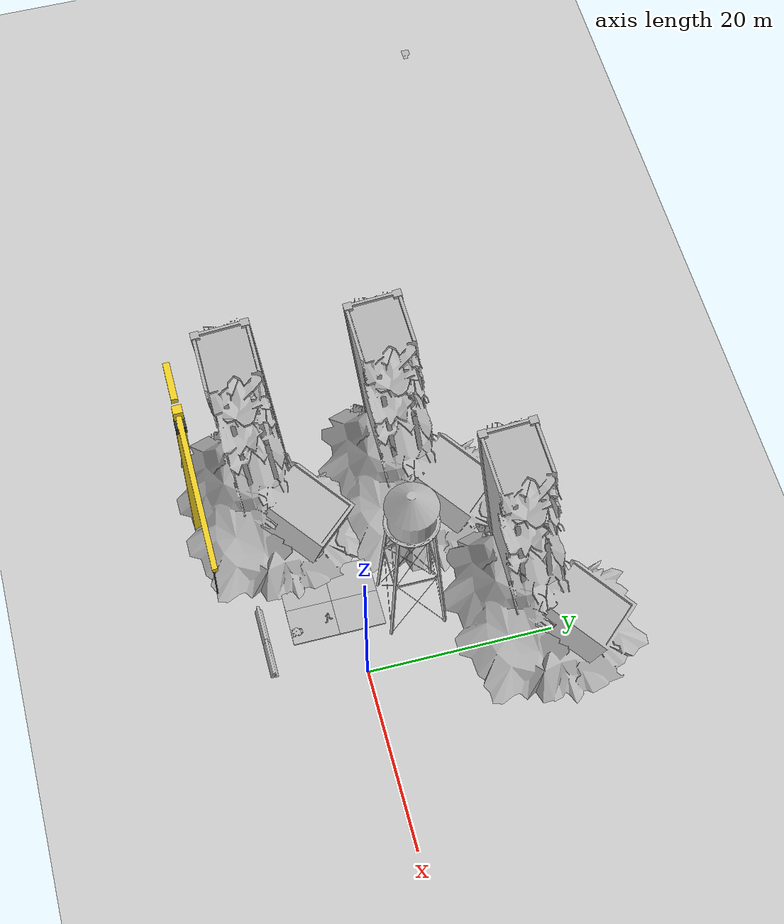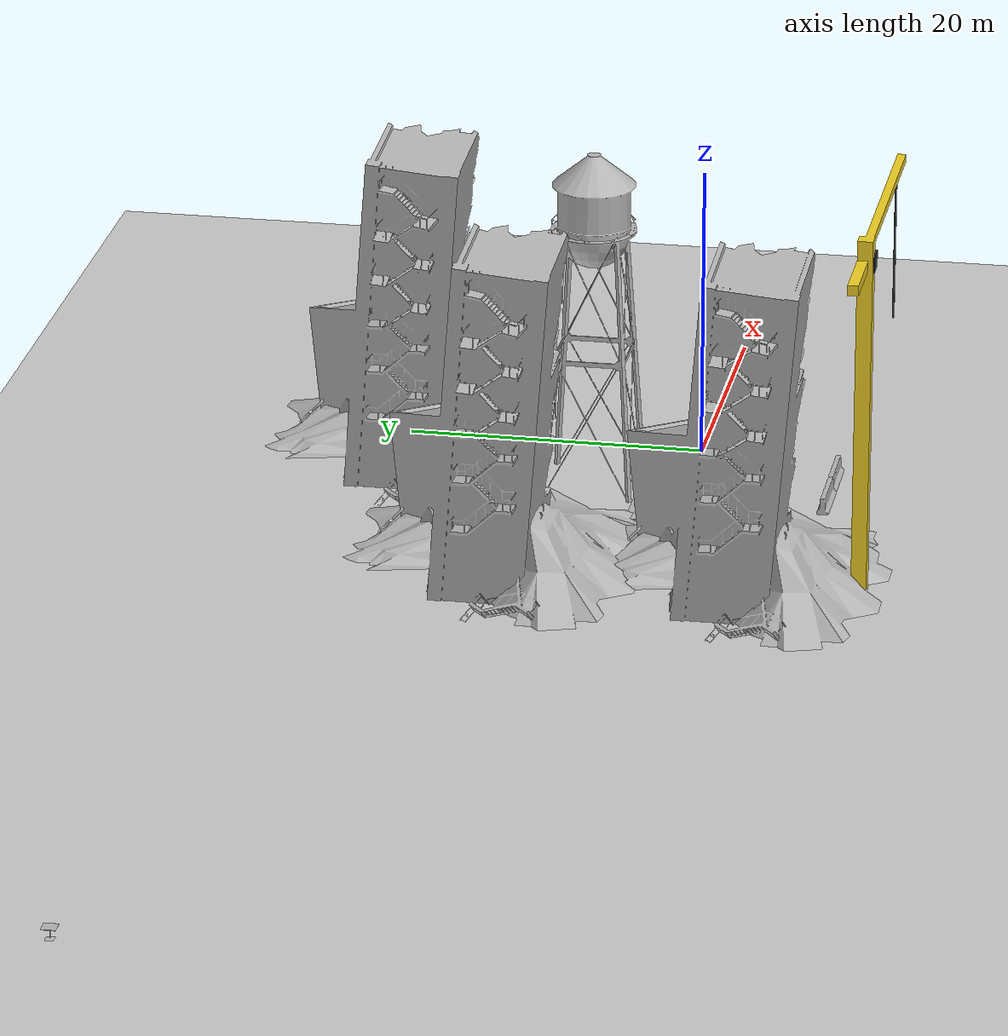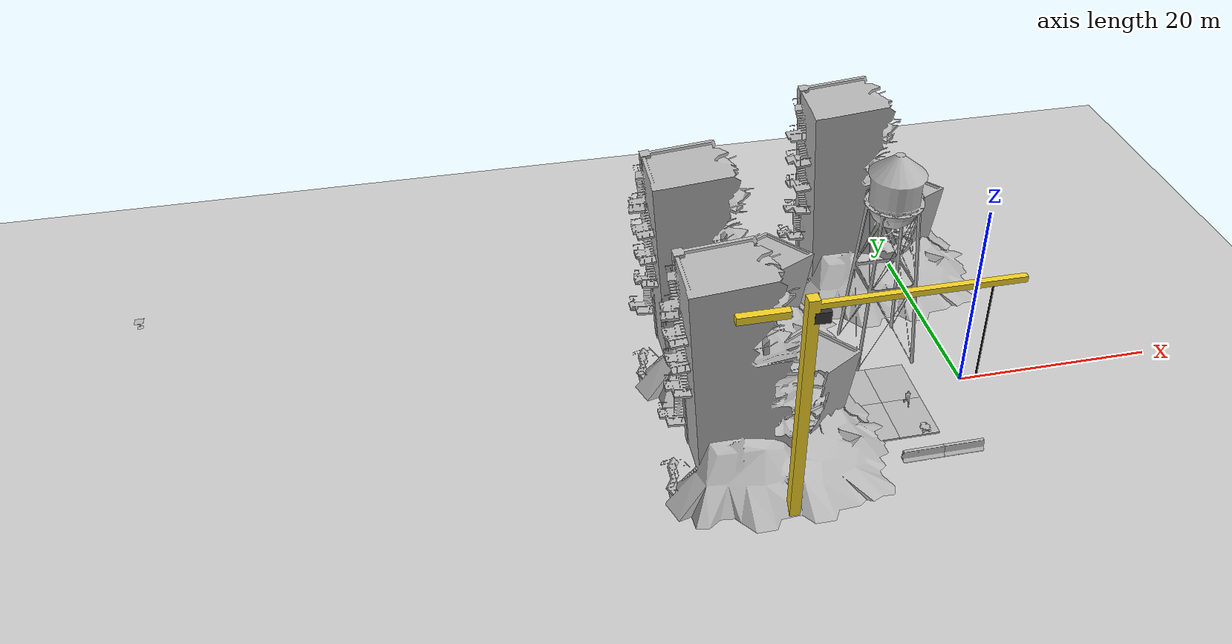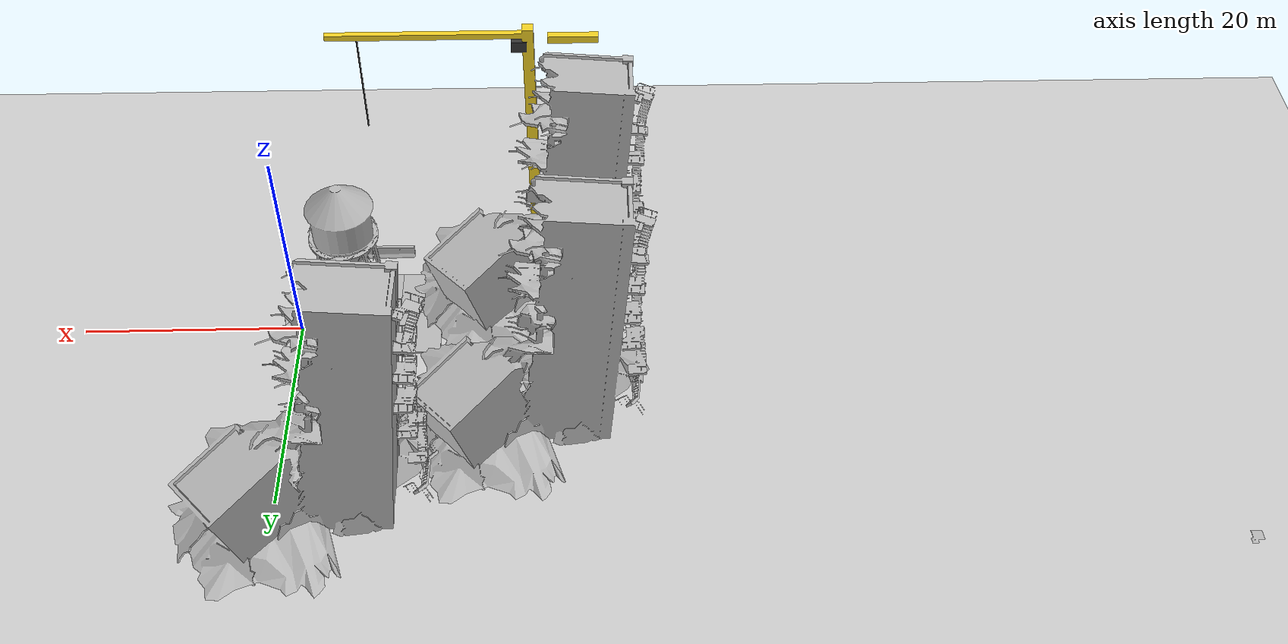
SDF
<sdf version="1.6">
 <world name="default">
  <model name="ground_plane">
   <static>1</static>
   <link name="link">
    <collision name="collision">
     <geometry><plane><normal>0 0 1</normal><size>100 100</size></plane></geometry>
     <surface>
      <contact><collide_bitmask>65535</collide_bitmask></contact>
      <friction><ode><mu>100</mu><mu2>50</mu2></ode></friction>
     </surface>
    </collision>
    <visual name="visual">
     <cast_shadows>0</cast_shadows>
     <geometry><plane><normal>0 0 1</normal><size>100 100</size></plane></geometry>
     <material>
      <script><uri>file://media/materials/scripts/gazebo.material</uri><name>Gazebo/Grey</name></script>
     </material>
    </visual>
   </link>
  </model>
  <model name="ball_bearing_0">
   <link name="link">
    <pose>0 0 0.003 0 -0 0</pose>
    <inertial>
     <mass>0.0011</mass>
     <inertia>
      <ixx>3.96e-09</ixx>
      <ixy>0</ixy>
      <ixz>0</ixz>
      <iyy>3.96e-09</iyy>
      <iyz>0</iyz>
      <izz>3.96e-09</izz>
     </inertia>
    </inertial>
    <collision name="collision">
     <geometry><sphere><radius>0.003</radius></sphere></geometry>
     <surface>
      <contact>
       <poissons_ratio>0.305</poissons_ratio>
       <elastic_modulus>2e+11</elastic_modulus>
       <ode><kp>100000</kp><kd>100</kd><max_vel>100</max_vel><min_depth>0.001</min_depth></ode>
      </contact>
      <friction>
       <torsional>
        <coefficient>1</coefficient>
        <use_patch_radius>0</use_patch_radius>
        <surface_radius>0.01</surface_radius>
       </torsional>
      </friction>
     </surface>
    </collision>
    <visual name="visual">
     <geometry><sphere><radius>0.003</radius></sphere></geometry>
     <material>
      <script><uri>file://media/materials/scripts/gazebo.material</uri><name>Gazebo/Grey</name></script>
     </material>
    </visual>
    <velocity_decay><linear>0</linear><angular>0.005</angular></velocity_decay>
   </link>
   <pose>-1.98894 4.15256 -0.000268 0 -0 0</pose>
  </model>
  <model name="tower_crane">
   <static>1</static>
   <link name="link">
    <collision name="collision">
     <geometry><mesh><uri>model://tower_crane/meshes/tower_crane.dae</uri></mesh></geometry>
    </collision>
    <visual name="visual">
     <geometry><mesh><uri>model://tower_crane/meshes/tower_crane.dae</uri></mesh></geometry>
    </visual>
   </link>
   <pose>-21.6491 -13.6197 0 0 -0 0</pose>
  </model>
  <model name="cafe_table">
   <static>1</static>
   <link name="link">
    <collision name="surface">
     <pose>0 0 0.755 0 -0 0</pose>
     <geometry><box><size>0.913 0.913 0.04</size></box></geometry>
    </collision>
    <collision name="column">
     <pose>0 0 0.37 0 -0 0</pose>
     <geometry><box><size>0.042 0.042 0.74</size></box></geometry>
    </collision>
    <collision name="base">
     <pose>0 0 0.02 0 -0 0</pose>
     <geometry><box><size>0.56 0.56 0.04</size></box></geometry>
    </collision>
    <visual name="visual">
     <geometry><mesh><uri>model://cafe_table/meshes/cafe_table.dae</uri></mesh></geometry>
    </visual>
   </link>
   <pose>-81.43 25.5131 0 0 -0 0</pose>
  </model>
  <model name="water_tower">
   <static>1</static>
   <link name="link">
    <collision name="collision">
     <geometry><mesh><uri>model://water_tower/meshes/water_tower.dae</uri></mesh></geometry>
    </collision>
    <visual name="visual">
     <geometry><mesh><uri>model://water_tower/meshes/water_tower.dae</uri></mesh></geometry>
    </visual>
   </link>
   <pose>-6.67298 6.39547 0 0 -0 0</pose>
  </model>
  <model name="collapsed_industrial">
   <static>1</static>
   <link name="link">
    <collision name="collision">
     <geometry><mesh><uri>model://collapsed_industrial/meshes/collapsed_industrial.dae</uri></mesh></geometry>
    </collision>
    <visual name="visual">
     <geometry><mesh><uri>model://collapsed_industrial/meshes/collapsed_industrial.dae</uri></mesh></geometry>
    </visual>
   </link>
   <pose>-3.44493 18.6224 0 0 -0 0</pose>
  </model>
  <model name="collapsed_industrial_0">
   <static>1</static>
   <link name="link">
    <collision name="collision">
     <geometry><mesh><uri>model://collapsed_industrial/meshes/collapsed_industrial.dae</uri></mesh></geometry>
    </collision>
    <visual name="visual">
     <geometry><mesh><uri>model://collapsed_industrial/meshes/collapsed_industrial.dae</uri></mesh></geometry>
    </visual>
   </link>
   <pose>-21.6566 9.44885 0 0 -0 0</pose>
  </model>
  <model name="collapsed_industrial_1">
   <static>1</static>
   <link name="link">
    <collision name="collision">
     <geometry><mesh><uri>model://collapsed_industrial/meshes/collapsed_industrial.dae</uri></mesh></geometry>
    </collision>
    <visual name="visual">
     <geometry><mesh><uri>model://collapsed_industrial/meshes/collapsed_industrial.dae</uri></mesh></geometry>
    </visual>
   </link>
   <pose>-22.1267 -6.4859 0 0 -0 0</pose>
  </model>
  <model name="jersey_barrier_2">
   <static>1</static>
   <link name="link">
    <visual name="visual">
     <geometry><mesh><uri>model://jersey_barrier/meshes/jersey_barrier.dae</uri></mesh></geometry>
    </visual>
    <collision name="upright">
     <pose>0 0 0.5715 0 -0 0</pose>
     <geometry><box><size>4.06542 0.3063 1.143</size></box></geometry>
    </collision>
    <collision name="base">
     <pose>0 0 0.032258 0 -0 0</pose>
     <geometry><box><size>4.06542 0.8107 0.064516</size></box></geometry>
    </collision>
    <collision name="base2">
     <pose>0 0 0.1 0 -0 0</pose>
     <geometry><box><size>4.06542 0.65 0.1</size></box></geometry>
    </collision>
    <collision name="base3">
     <pose>0 0 0.2 0 -0 0</pose>
     <geometry><box><size>4.06542 0.5 0.1</size></box></geometry>
    </collision>
    <collision name="left-angle">
     <pose>0 -0.224 0.2401 0.9 -0 0</pose>
     <geometry><box><size>4.06542 0.5 0.064516</size></box></geometry>
    </collision>
    <collision name="right-angle">
     <pose>0 0.224 0.2401 -0.9 0 0</pose>
     <geometry><box><size>4.06542 0.5 0.064516</size></box></geometry>
    </collision>
   </link>
   <pose>-3.90215 -9.5815 0 0 -0 0</pose>
  </model>
  <model name="jersey_barrier_3">
   <static>1</static>
   <link name="link">
    <visual name="visual">
     <geometry><mesh><uri>model://jersey_barrier/meshes/jersey_barrier.dae</uri></mesh></geometry>
    </visual>
    <collision name="upright">
     <pose>0 0 0.5715 0 -0 0</pose>
     <geometry><box><size>4.06542 0.3063 1.143</size></box></geometry>
    </collision>
    <collision name="base">
     <pose>0 0 0.032258 0 -0 0</pose>
     <geometry><box><size>4.06542 0.8107 0.064516</size></box></geometry>
    </collision>
    <collision name="base2">
     <pose>0 0 0.1 0 -0 0</pose>
     <geometry><box><size>4.06542 0.65 0.1</size></box></geometry>
    </collision>
    <collision name="base3">
     <pose>0 0 0.2 0 -0 0</pose>
     <geometry><box><size>4.06542 0.5 0.1</size></box></geometry>
    </collision>
    <collision name="left-angle">
     <pose>0 -0.224 0.2401 0.9 -0 0</pose>
     <geometry><box><size>4.06542 0.5 0.064516</size></box></geometry>
    </collision>
    <collision name="right-angle">
     <pose>0 0.224 0.2401 -0.9 0 0</pose>
     <geometry><box><size>4.06542 0.5 0.064516</size></box></geometry>
    </collision>
   </link>
   <pose>-7.8208 -9.59458 0 0 -0 0</pose>
  </model>
  <model name="mars_rover">
   <static>1</static>
   <link name="link">
    <collision name="solar_panel_collision">
     <pose>0 -0.06945 0.47293 0 -0 0</pose>
     <geometry><box><size>0.87974 0.8821 0.02602</size></box></geometry>
    </collision>
    <collision name="chassis_collision">
     <pose>0 -0.05 0.31475 0 -0 0</pose>
     <geometry><box><size>0.49522 0.67401 0.28915</size></box></geometry>
    </collision>
    <collision name="rear_left_bumper_collision">
     <pose>0.30107 0.3835 0.38976 0 -0 0</pose>
     <geometry><box><size>0.04442 0.38897 0.07918</size></box></geometry>
    </collision>
    <collision name="rear_right_bumper_collision">
     <pose>-0.30107 0.3835 0.38976 0 -0 0</pose>
     <geometry><box><size>0.04442 0.38897 0.07918</size></box></geometry>
    </collision>
    <collision name="rear_bumper_collision">
     <pose>0 0.59414 0.38976 0 -0 0</pose>
     <geometry><box><size>0.56656 0.04442 0.07918</size></box></geometry>
    </collision>
    <collision name="bin_back_panel_collision">
     <pose>0 0.47 0.32114 0.69137 -0 0</pose>
     <geometry><box><size>0.43774 0.212366 0.05173</size></box></geometry>
    </collision>
    <collision name="bin_left_panel_collision1">
     <pose>0.22615 0.32897 0.33193 0 -0 0</pose>
     <geometry><box><size>0.01116 0.19338 0.16304</size></box></geometry>
    </collision>
    <collision name="bin_left_panel_collision2">
     <pose>0.22615 0.471 0.39308 0 -0 0</pose>
     <geometry><box><size>0.01116 0.15 0.04</size></box></geometry>
    </collision>
    <collision name="bin_left_panel_collision3">
     <pose>0.22615 0.45 0.35308 0 -0 0</pose>
     <geometry><box><size>0.01116 0.15 0.04</size></box></geometry>
    </collision>
    <collision name="bin_left_panel_collision4">
     <pose>0.22615 0.39308 0.31308 0 -0 0</pose>
     <geometry><box><size>0.01116 0.15 0.04</size></box></geometry>
    </collision>
    <collision name="bin_right_panel_collision1">
     <pose>-0.22615 0.32897 0.33193 0 -0 0</pose>
     <geometry><box><size>0.01116 0.19338 0.16304</size></box></geometry>
    </collision>
    <collision name="bin_right_panel_collision2">
     <pose>-0.22615 0.471 0.39308 0 -0 0</pose>
     <geometry><box><size>0.01116 0.15 0.04</size></box></geometry>
    </collision>
    <collision name="bin_right_panel_collision3">
     <pose>-0.22615 0.45 0.35308 0 -0 0</pose>
     <geometry><box><size>0.01116 0.15 0.04</size></box></geometry>
    </collision>
    <collision name="bin_right_panel_collision4">
     <pose>-0.22615 0.39308 0.31308 0 -0 0</pose>
     <geometry><box><size>0.01116 0.15 0.04</size></box></geometry>
    </collision>
    <collision name="bin_front_panel_collision">
     <pose>0 0.30047 0.32114 2.26207 -0 0</pose>
     <geometry><box><size>0.43774 0.212366 0.05173</size></box></geometry>
    </collision>
    <collision name="front_left_wheel_collision">
     <pose>0.31103 -0.32115 0.1358 1.5707 0 1.5707</pose>
     <geometry><cylinder><radius>0.1358</radius><length>0.1641</length></cylinder></geometry>
    </collision>
    <collision name="front_right_wheel_collision">
     <pose>-0.31103 -0.32115 0.1358 1.5707 0 1.5707</pose>
     <geometry><cylinder><radius>0.1358</radius><length>0.1641</length></cylinder></geometry>
    </collision>
    <collision name="rear_left_wheel_collision">
     <pose>0.31103 0.28049 0.1358 1.5707 0 1.5707</pose>
     <geometry><cylinder><radius>0.1358</radius><length>0.1641</length></cylinder></geometry>
    </collision>
    <collision name="rear_right_wheel_collision">
     <pose>-0.31103 0.28049 0.1358 1.5707 0 1.5707</pose>
     <geometry><cylinder><radius>0.1358</radius><length>0.1641</length></cylinder></geometry>
    </collision>
    <visual name="visual">
     <geometry><mesh><uri>model://mars_rover/meshes/rover.dae</uri></mesh></geometry>
    </visual>
   </link>
   <pose>-6.23473 -6.22713 0 0 -0 0</pose>
  </model>
  <model name="mud_box">
   <static>1</static>
   <link name="link">
    <collision name="collision"><geometry><box><size>8 10 0.2</size></box></geometry></collision>
    <visual name="visual_1">
     <pose>-2 2.5 0 0 -0 0</pose>
     <cast_shadows>0</cast_shadows>
     <geometry><box><size>4 5 0.2</size></box></geometry>
     <material>
      <script>
       <uri>model://mud_box/materials/scripts</uri>
       <uri>model://mud_box/materials/textures</uri>
       <name>vrc/mud</name>
      </script>
     </material>
    </visual>
    <visual name="visual_2">
     <pose>2 2.5 0 0 -0 0</pose>
     <cast_shadows>0</cast_shadows>
     <geometry><box><size>4 5 0.2</size></box></geometry>
     <material>
      <script>
       <uri>model://mud_box/materials/scripts</uri>
       <uri>model://mud_box/materials/textures</uri>
       <name>vrc/mud</name>
      </script>
     </material>
    </visual>
    <visual name="visual_3">
     <pose>2 -2.5 0 0 -0 0</pose>
     <cast_shadows>0</cast_shadows>
     <geometry><box><size>4 5 0.2</size></box></geometry>
     <material>
      <script>
       <uri>model://mud_box/materials/scripts</uri>
       <uri>model://mud_box/materials/textures</uri>
       <name>vrc/mud</name>
      </script>
     </material>
    </visual>
    <visual name="visual_4">
     <pose>-2 -2.5 0 0 -0 0</pose>
     <cast_shadows>0</cast_shadows>
     <geometry><box><size>4 5 0.2</size></box></geometry>
     <material>
      <script>
       <uri>model://mud_box/materials/scripts</uri>
       <uri>model://mud_box/materials/textures</uri>
       <name>vrc/mud</name>
      </script>
     </material>
    </visual>
   </link>
   <pose>-8.99019 -1.825 0 0 -0 0</pose>
  </model>
  <model name="person_walking">
   <link name="link">
    <inertial>
     <pose>0 0 0.95 0 -0 0</pose>
     <mass>80</mass>
     <inertia><ixx>27.82</ixx><ixy>0</ixy><ixz>0</ixz><iyy>24.88</iyy><iyz>0</iyz><izz>4.57</izz></inertia>
    </inertial>
    <collision name="bottom">
     <pose>0 0 0.01 0 -0 0</pose>
     <geometry><box><size>0.35 0.75 0.02</size></box></geometry>
    </collision>
    <collision name="person">
     <pose>0 0 -0.02 0 -0 0</pose>
     <geometry><mesh><uri>model://person_walking/meshes/walking.dae</uri></mesh></geometry>
    </collision>
    <visual name="visual">
     <pose>0 0 -0.02 0 -0 0</pose>
     <geometry><mesh><uri>model://person_walking/meshes/walking.dae</uri></mesh></geometry>
    </visual>
   </link>
   <pose>-6.74263 -2.6352 0.100001 -1e-06 1e-06 0.00147</pose>
  </model>
 </world>
</sdf>
